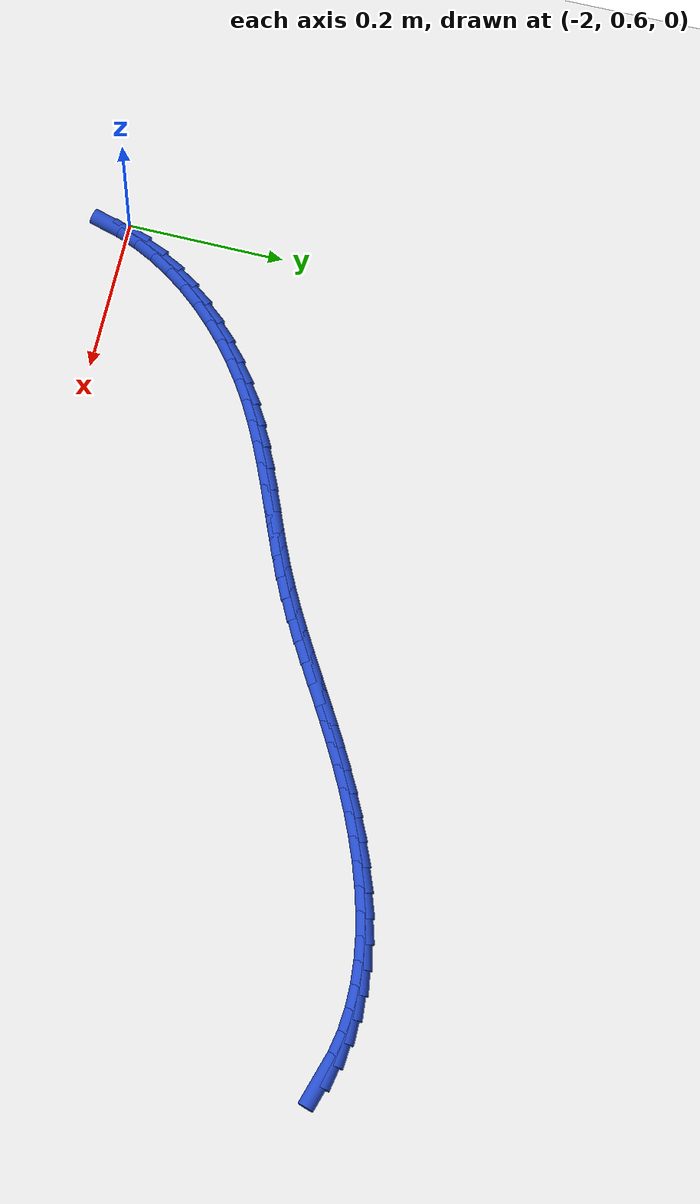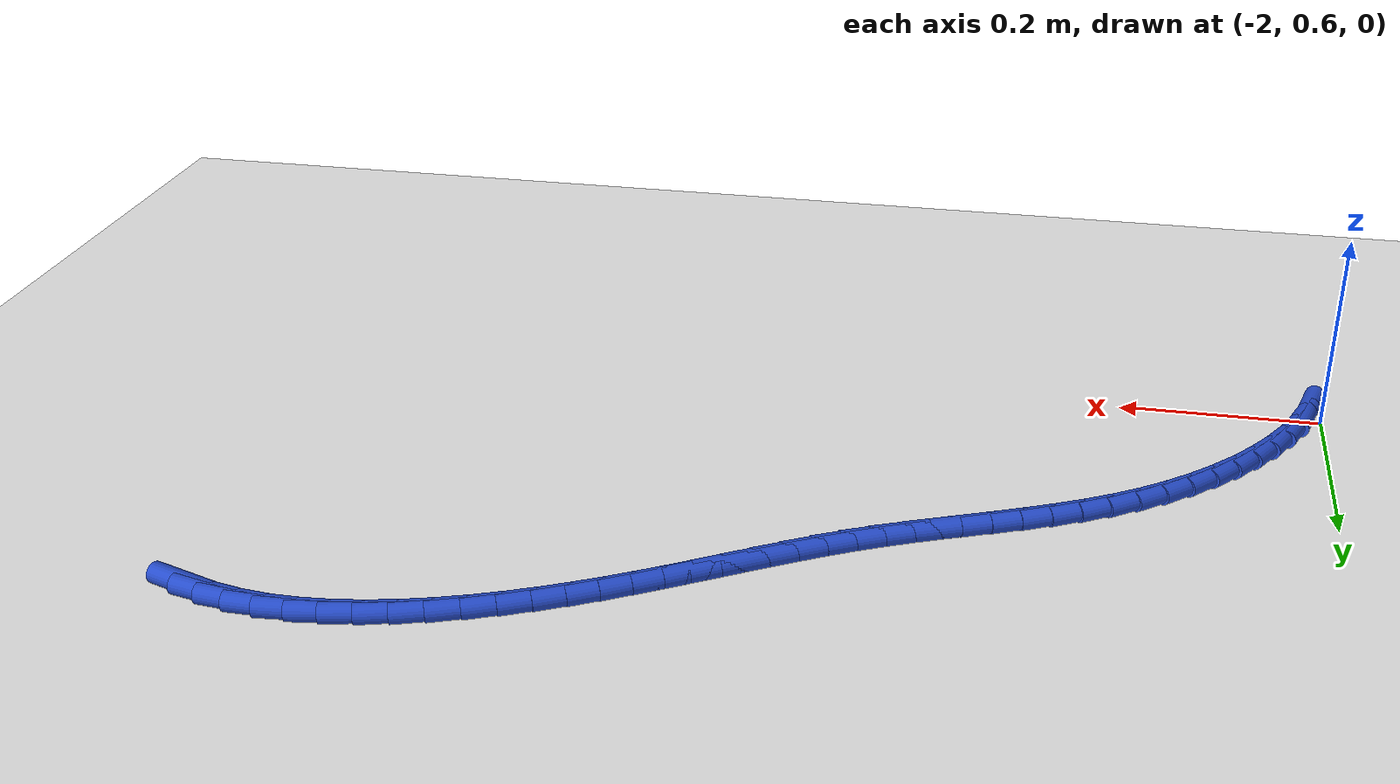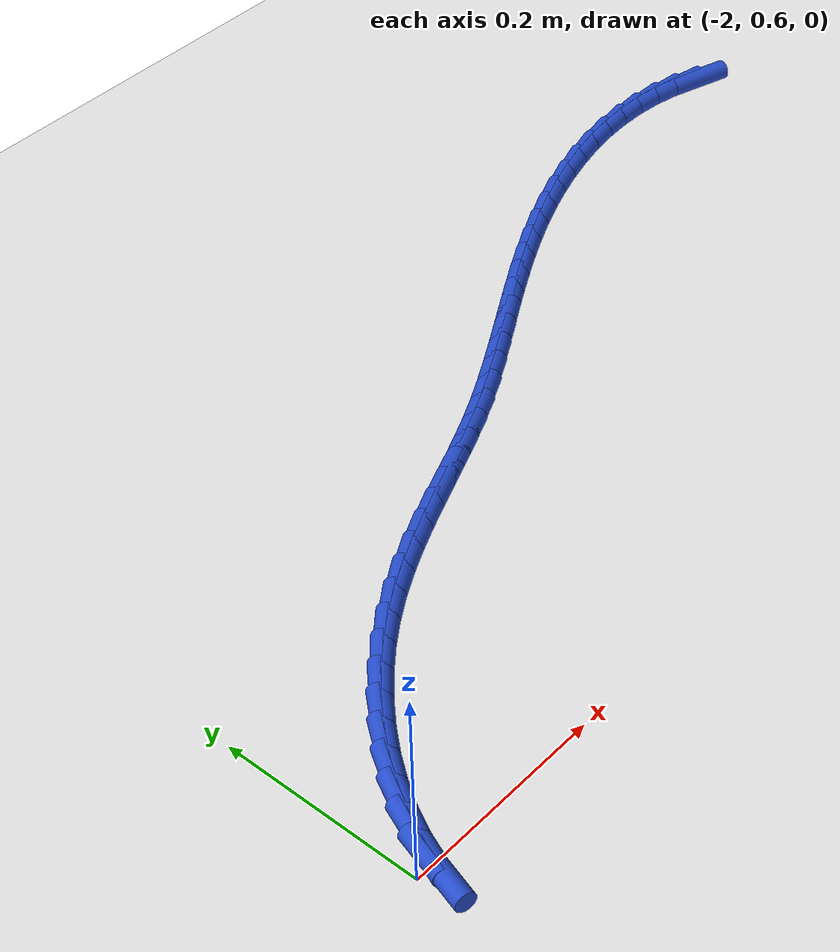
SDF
<sdf version="1.6">
 <world name="default">
  <model name="ground_plane">
   <static>1</static>
   <link name="link">
    <collision name="collision">
     <geometry><plane><normal>0 0 1</normal><size>100 100</size></plane></geometry>
     <surface><friction><ode><mu>100</mu><mu2>50</mu2></ode></friction></surface>
    </collision>
    <visual name="visual">
     <cast_shadows>0</cast_shadows>
     <geometry><plane><normal>0 0 1</normal><size>100 100</size></plane></geometry>
     <material>
      <script><uri>file://media/materials/scripts/gazebo.material</uri><name>Gazebo/WhiteGlow</name></script>
     </material>
    </visual>
   </link>
  </model>
  <model name="line">
   <link name="link_59">
    <pose>-1.017250696293944 1.0805025394654466 0.01 0 1.57 -0.30448769321737107</pose>
    <collision name="collision">
     <geometry><cylinder><radius>0.01</radius><length>0.08</length></cylinder></geometry>
    </collision>
    <visual name="visual">
     <material>
      <script><name>Gazebo/Blue</name><uri>file://media/materials/scripts/gazebo.material</uri></script>
     </material>
     <geometry><cylinder><radius>0.01</radius><length>0.08</length></cylinder></geometry>
    </visual>
   </link>
   <link name="link_60">
    <pose>-1.043497933649188 1.0887510024155171 0.01 0 1.57 -0.19464959362633424</pose>
    <collision name="collision">
     <geometry><cylinder><radius>0.01</radius><length>0.08</length></cylinder></geometry>
    </collision>
    <visual name="visual">
     <material>
      <script><name>Gazebo/Blue</name><uri>file://media/materials/scripts/gazebo.material</uri></script>
     </material>
     <geometry><cylinder><radius>0.01</radius><length>0.08</length></cylinder></geometry>
    </visual>
   </link>
   <link name="link_61">
    <pose>-1.0704607555683376 1.0940666083127843 0.01 0 1.57 -0.09371065280296133</pose>
    <collision name="collision">
     <geometry><cylinder><radius>0.01</radius><length>0.08</length></cylinder></geometry>
    </collision>
    <visual name="visual">
     <material>
      <script><name>Gazebo/Blue</name><uri>file://media/materials/scripts/gazebo.material</uri></script>
     </material>
     <geometry><cylinder><radius>0.01</radius><length>0.08</length></cylinder></geometry>
    </visual>
   </link>
   <link name="link_62">
    <pose>-1.0980008150682683 1.096654986481422 0.01 0 1.57 -0.0025459436662339007</pose>
    <collision name="collision">
     <geometry><cylinder><radius>0.01</radius><length>0.08</length></cylinder></geometry>
    </collision>
    <visual name="visual">
     <material>
      <script><name>Gazebo/Blue</name><uri>file://media/materials/scripts/gazebo.material</uri></script>
     </material>
     <geometry><cylinder><radius>0.01</radius><length>0.08</length></cylinder></geometry>
    </visual>
   </link>
   <link name="link_63">
    <pose>-1.1259782229353827 1.096726215539677 0.01 0 1.57 0.07891102301631375</pose>
    <collision name="collision">
     <geometry><cylinder><radius>0.01</radius><length>0.08</length></cylinder></geometry>
    </collision>
    <visual name="visual">
     <material>
      <script><name>Gazebo/Blue</name><uri>file://media/materials/scripts/gazebo.material</uri></script>
     </material>
     <geometry><cylinder><radius>0.01</radius><length>0.08</length></cylinder></geometry>
    </visual>
   </link>
   <link name="link_64">
    <pose>-1.1542530899560826 1.0944903741057956 0.01 0 1.57 0.15122702188237377</pose>
    <collision name="collision">
     <geometry><cylinder><radius>0.01</radius><length>0.08</length></cylinder></geometry>
    </collision>
    <visual name="visual">
     <material>
      <script><name>Gazebo/Blue</name><uri>file://media/materials/scripts/gazebo.material</uri></script>
     </material>
     <geometry><cylinder><radius>0.01</radius><length>0.08</length></cylinder></geometry>
    </visual>
   </link>
   <link name="link_65">
    <pose>-1.1826855269167695 1.090157540798024 0.01 0 1.57 0.21523302358469026</pose>
    <collision name="collision">
     <geometry><cylinder><radius>0.01</radius><length>0.08</length></cylinder></geometry>
    </collision>
    <visual name="visual">
     <material>
      <script><name>Gazebo/Blue</name><uri>file://media/materials/scripts/gazebo.material</uri></script>
     </material>
     <geometry><cylinder><radius>0.01</radius><length>0.08</length></cylinder></geometry>
    </visual>
   </link>
   <link name="link_66">
    <pose>-1.2111356446038466 1.0839377942346085 0.01 0 1.57 0.27185498440011013</pose>
    <collision name="collision">
     <geometry><cylinder><radius>0.01</radius><length>0.08</length></cylinder></geometry>
    </collision>
    <visual name="visual">
     <material>
      <script><name>Gazebo/Blue</name><uri>file://media/materials/scripts/gazebo.material</uri></script>
     </material>
     <geometry><cylinder><radius>0.01</radius><length>0.08</length></cylinder></geometry>
    </visual>
   </link>
   <link name="link_67">
    <pose>-1.2394635538037153 1.0760412130337957 0.01 0 1.57 0.3220092115223333</pose>
    <collision name="collision">
     <geometry><cylinder><radius>0.01</radius><length>0.08</length></cylinder></geometry>
    </collision>
    <visual name="visual">
     <material>
      <script><name>Gazebo/Blue</name><uri>file://media/materials/scripts/gazebo.material</uri></script>
     </material>
     <geometry><cylinder><radius>0.01</radius><length>0.08</length></cylinder></geometry>
    </visual>
   </link>
   <link name="link_68">
    <pose>-1.2675293653027777 1.0666778758138318 0.01 0 1.57 0.36654646738478314</pose>
    <collision name="collision">
     <geometry><cylinder><radius>0.01</radius><length>0.08</length></cylinder></geometry>
    </collision>
    <visual name="visual">
     <material>
      <script><name>Gazebo/Blue</name><uri>file://media/materials/scripts/gazebo.material</uri></script>
     </material>
     <geometry><cylinder><radius>0.01</radius><length>0.08</length></cylinder></geometry>
    </visual>
   </link>
   <link name="link_69">
    <pose>-1.2951931898874358 1.0560578611929627 0.01 0 1.57 0.4062279820900482</pose>
    <collision name="collision">
     <geometry><cylinder><radius>0.01</radius><length>0.08</length></cylinder></geometry>
    </collision>
    <visual name="visual">
     <material>
      <script><name>Gazebo/Blue</name><uri>file://media/materials/scripts/gazebo.material</uri></script>
     </material>
     <geometry><cylinder><radius>0.01</radius><length>0.08</length></cylinder></geometry>
    </visual>
   </link>
   <link name="link_70">
    <pose>-1.3223151383440923 1.044391247789435 0.01 0 1.57 0.44170567295344376</pose>
    <collision name="collision">
     <geometry><cylinder><radius>0.01</radius><length>0.08</length></cylinder></geometry>
    </collision>
    <visual name="visual">
     <material>
      <script><name>Gazebo/Blue</name><uri>file://media/materials/scripts/gazebo.material</uri></script>
     </material>
     <geometry><cylinder><radius>0.01</radius><length>0.08</length></cylinder></geometry>
    </visual>
   </link>
   <link name="link_71">
    <pose>-1.3487570812899767 1.0318877543113232 0.01 0 1.57 0.4726042678196913</pose>
    <collision name="collision">
     <geometry><cylinder><radius>0.01</radius><length>0.08</length></cylinder></geometry>
    </collision>
    <visual name="visual">
     <material>
      <script><name>Gazebo/Blue</name><uri>file://media/materials/scripts/gazebo.material</uri></script>
     </material>
     <geometry><cylinder><radius>0.01</radius><length>0.08</length></cylinder></geometry>
    </visual>
   </link>
   <link name="link_72">
    <pose>-1.3744805622894767 1.0187367149462125 0.01 0 1.57 0.4974909921542903</pose>
    <collision name="collision">
     <geometry><cylinder><radius>0.01</radius><length>0.08</length></cylinder></geometry>
    </collision>
    <visual name="visual">
     <material>
      <script><name>Gazebo/Blue</name><uri>file://media/materials/scripts/gazebo.material</uri></script>
     </material>
     <geometry><cylinder><radius>0.01</radius><length>0.08</length></cylinder></geometry>
    </visual>
   </link>
   <link name="link_73">
    <pose>-1.399598308522301 1.0050965447046003 0.01 0 1.57 0.5159266707499283</pose>
    <collision name="collision">
     <geometry><cylinder><radius>0.01</radius><length>0.08</length></cylinder></geometry>
    </collision>
    <visual name="visual">
     <material>
      <script><name>Gazebo/Blue</name><uri>file://media/materials/scripts/gazebo.material</uri></script>
     </material>
     <geometry><cylinder><radius>0.01</radius><length>0.08</length></cylinder></geometry>
    </visual>
   </link>
   <link name="link_74">
    <pose>-1.42423567295703 0.9911230764454649 0.01 0 1.57 0.5276514736153676</pose>
    <collision name="collision">
     <geometry><cylinder><radius>0.01</radius><length>0.08</length></cylinder></geometry>
    </collision>
    <visual name="visual">
     <material>
      <script><name>Gazebo/Blue</name><uri>file://media/materials/scripts/gazebo.material</uri></script>
     </material>
     <geometry><cylinder><radius>0.01</radius><length>0.08</length></cylinder></geometry>
    </visual>
   </link>
   <link name="link_75">
    <pose>-1.4485180085622433 0.9769721430277838 0.01 0 1.57 0.5324632685793154</pose>
    <collision name="collision">
     <geometry><cylinder><radius>0.01</radius><length>0.08</length></cylinder></geometry>
    </collision>
    <visual name="visual">
     <material>
      <script><name>Gazebo/Blue</name><uri>file://media/materials/scripts/gazebo.material</uri></script>
     </material>
     <geometry><cylinder><radius>0.01</radius><length>0.08</length></cylinder></geometry>
    </visual>
   </link>
   <link name="link_76">
    <pose>-1.472570668306522 0.9627995773105359 0.01 0 1.57 0.5302059813535058</pose>
    <collision name="collision">
     <geometry><cylinder><radius>0.01</radius><length>0.08</length></cylinder></geometry>
    </collision>
    <visual name="visual">
     <material>
      <script><name>Gazebo/Blue</name><uri>file://media/materials/scripts/gazebo.material</uri></script>
     </material>
     <geometry><cylinder><radius>0.01</radius><length>0.08</length></cylinder></geometry>
    </visual>
   </link>
   <link name="link_77">
    <pose>-1.496519005158446 0.9487612121526985 0.01 0 1.57 0.5207659003003821</pose>
    <collision name="collision">
     <geometry><cylinder><radius>0.01</radius><length>0.08</length></cylinder></geometry>
    </collision>
    <visual name="visual">
     <material>
      <script><name>Gazebo/Blue</name><uri>file://media/materials/scripts/gazebo.material</uri></script>
     </material>
     <geometry><cylinder><radius>0.01</radius><length>0.08</length></cylinder></geometry>
    </visual>
   </link>
   <link name="link_78">
    <pose>-1.5204883720865956 0.9350128804132496 0.01 0 1.57 0.5040777116409848</pose>
    <collision name="collision">
     <geometry><cylinder><radius>0.01</radius><length>0.08</length></cylinder></geometry>
    </collision>
    <visual name="visual">
     <material>
      <script><name>Gazebo/Blue</name><uri>file://media/materials/scripts/gazebo.material</uri></script>
     </material>
     <geometry><cylinder><radius>0.01</radius><length>0.08</length></cylinder></geometry>
    </visual>
   </link>
   <link name="link_79">
    <pose>-1.5446041220595514 0.9217104149511683 0.01 0 1.57 0.4801411841646987</pose>
    <collision name="collision">
     <geometry><cylinder><radius>0.01</radius><length>0.08</length></cylinder></geometry>
    </collision>
    <visual name="visual">
     <material>
      <script><name>Gazebo/Blue</name><uri>file://media/materials/scripts/gazebo.material</uri></script>
     </material>
     <geometry><cylinder><radius>0.01</radius><length>0.08</length></cylinder></geometry>
    </visual>
   </link>
   <link name="link_80">
    <pose>-1.5689916080458937 0.9090096486254315 0.01 0 1.57 0.4491296915124729</pose>
    <collision name="collision">
     <geometry><cylinder><radius>0.01</radius><length>0.08</length></cylinder></geometry>
    </collision>
    <visual name="visual">
     <material>
      <script><name>Gazebo/Blue</name><uri>file://media/materials/scripts/gazebo.material</uri></script>
     </material>
     <geometry><cylinder><radius>0.01</radius><length>0.08</length></cylinder></geometry>
    </visual>
   </link>
   <link name="link_81">
    <pose>-1.5937750942696884 0.8970644511902185 0.01 0 1.57 0.41758502771615713</pose>
    <collision name="collision">
     <geometry><cylinder><radius>0.01</radius><length>0.08</length></cylinder></geometry>
    </collision>
    <visual name="visual">
     <material>
      <script><name>Gazebo/Blue</name><uri>file://media/materials/scripts/gazebo.material</uri></script>
     </material>
     <geometry><cylinder><radius>0.01</radius><length>0.08</length></cylinder></geometry>
    </visual>
   </link>
   <link name="link_82">
    <pose>-1.6189938402465534 0.8858754212245079 0.01 0 1.57 0.3963757992233775</pose>
    <collision name="collision">
     <geometry><cylinder><radius>0.01</radius><length>0.08</length></cylinder></geometry>
    </collision>
    <visual name="visual">
     <material>
      <script><name>Gazebo/Blue</name><uri>file://media/materials/scripts/gazebo.material</uri></script>
     </material>
     <geometry><cylinder><radius>0.01</radius><length>0.08</length></cylinder></geometry>
    </visual>
   </link>
   <link name="link_83">
    <pose>-1.644542580585156 0.8751825658325427 0.01 0 1.57 0.38645741820893587</pose>
    <collision name="collision">
     <geometry><cylinder><radius>0.01</radius><length>0.08</length></cylinder></geometry>
    </collision>
    <visual name="visual">
     <material>
      <script><name>Gazebo/Blue</name><uri>file://media/materials/scripts/gazebo.material</uri></script>
     </material>
     <geometry><cylinder><radius>0.01</radius><length>0.08</length></cylinder></geometry>
    </visual>
   </link>
   <link name="link_84">
    <pose>-1.670301995540597 0.8647005508483365 0.01 0 1.57 0.38769536401477456</pose>
    <collision name="collision">
     <geometry><cylinder><radius>0.01</radius><length>0.08</length></cylinder></geometry>
    </collision>
    <visual name="visual">
     <material>
      <script><name>Gazebo/Blue</name><uri>file://media/materials/scripts/gazebo.material</uri></script>
     </material>
     <geometry><cylinder><radius>0.01</radius><length>0.08</length></cylinder></geometry>
    </visual>
   </link>
   <link name="link_85">
    <pose>-1.6961527653679773 0.8541440421059018 0.01 0 1.57 0.399954985552205</pose>
    <collision name="collision">
     <geometry><cylinder><radius>0.01</radius><length>0.08</length></cylinder></geometry>
    </collision>
    <visual name="visual">
     <material>
      <script><name>Gazebo/Blue</name><uri>file://media/materials/scripts/gazebo.material</uri></script>
     </material>
     <geometry><cylinder><radius>0.01</radius><length>0.08</length></cylinder></geometry>
    </visual>
   </link>
   <link name="link_86">
    <pose>-1.7219755703223991 0.8432277054392524 0.01 0 1.57 0.42309728897536186</pose>
    <collision name="collision">
     <geometry><cylinder><radius>0.01</radius><length>0.08</length></cylinder></geometry>
    </collision>
    <visual name="visual">
     <material>
      <script><name>Gazebo/Blue</name><uri>file://media/materials/scripts/gazebo.material</uri></script>
     </material>
     <geometry><cylinder><radius>0.01</radius><length>0.08</length></cylinder></geometry>
    </visual>
   </link>
   <link name="link_87">
    <pose>-1.7476510906589622 0.8316662066824009 0.01 0 1.57 0.4569358615915633</pose>
    <collision name="collision">
     <geometry><cylinder><radius>0.01</radius><length>0.08</length></cylinder></geometry>
    </collision>
    <visual name="visual">
     <material>
      <script><name>Gazebo/Blue</name><uri>file://media/materials/scripts/gazebo.material</uri></script>
     </material>
     <geometry><cylinder><radius>0.01</radius><length>0.08</length></cylinder></geometry>
    </visual>
   </link>
   <link name="link_88">
    <pose>-1.7730600066327689 0.8191742116693609 0.01 0 1.57 0.5011596674941322</pose>
    <collision name="collision">
     <geometry><cylinder><radius>0.01</radius><length>0.08</length></cylinder></geometry>
    </collision>
    <visual name="visual">
     <material>
      <script><name>Gazebo/Blue</name><uri>file://media/materials/scripts/gazebo.material</uri></script>
     </material>
     <geometry><cylinder><radius>0.01</radius><length>0.08</length></cylinder></geometry>
    </visual>
   </link>
   <link name="link_89">
    <pose>-1.79808299849892 0.805466386234145 0.01 0 1.57 0.5551867098563182</pose>
    <collision name="collision">
     <geometry><cylinder><radius>0.01</radius><length>0.08</length></cylinder></geometry>
    </collision>
    <visual name="visual">
     <material>
      <script><name>Gazebo/Blue</name><uri>file://media/materials/scripts/gazebo.material</uri></script>
     </material>
     <geometry><cylinder><radius>0.01</radius><length>0.08</length></cylinder></geometry>
    </visual>
   </link>
   <link name="link_90">
    <pose>-1.822600254136781 0.7902592047017765 0.01 0 1.57 0.6150440942036165</pose>
    <collision name="collision">
     <geometry><cylinder><radius>0.01</radius><length>0.08</length></cylinder></geometry>
    </collision>
    <visual name="visual">
     <material>
      <script><name>Gazebo/Blue</name><uri>file://media/materials/scripts/gazebo.material</uri></script>
     </material>
     <geometry><cylinder><radius>0.01</radius><length>0.08</length></cylinder></geometry>
    </visual>
   </link>
   <link name="link_91">
    <pose>-1.8464543142794712 0.7734074189779196 0.01 0 1.57 0.6755977644920126</pose>
    <collision name="collision">
     <geometry><cylinder><radius>0.01</radius><length>0.08</length></cylinder></geometry>
    </collision>
    <visual name="visual">
     <material>
      <script><name>Gazebo/Blue</name><uri>file://media/materials/scripts/gazebo.material</uri></script>
     </material>
     <geometry><cylinder><radius>0.01</radius><length>0.08</length></cylinder></geometry>
    </visual>
   </link>
   <link name="link_92">
    <pose>-1.8694241570939931 0.7549992456192872 0.01 0 1.57 0.7373765911074086</pose>
    <collision name="collision">
     <geometry><cylinder><radius>0.01</radius><length>0.08</length></cylinder></geometry>
    </collision>
    <visual name="visual">
     <material>
      <script><name>Gazebo/Blue</name><uri>file://media/materials/scripts/gazebo.material</uri></script>
     </material>
     <geometry><cylinder><radius>0.01</radius><length>0.08</length></cylinder></geometry>
    </visual>
   </link>
   <link name="link_93">
    <pose>-1.8912826352710568 0.7351453999939737 0.01 0 1.57 0.8014326566754941</pose>
    <collision name="collision">
     <geometry><cylinder><radius>0.01</radius><length>0.08</length></cylinder></geometry>
    </collision>
    <visual name="visual">
     <material>
      <script><name>Gazebo/Blue</name><uri>file://media/materials/scripts/gazebo.material</uri></script>
     </material>
     <geometry><cylinder><radius>0.01</radius><length>0.08</length></cylinder></geometry>
    </visual>
   </link>
   <link name="link_94">
    <pose>-1.9118026015013694 0.7139565974700741 0.01 0 1.57 0.8688144563385514</pose>
    <collision name="collision">
     <geometry><cylinder><radius>0.01</radius><length>0.08</length></cylinder></geometry>
    </collision>
    <visual name="visual">
     <material>
      <script><name>Gazebo/Blue</name><uri>file://media/materials/scripts/gazebo.material</uri></script>
     </material>
     <geometry><cylinder><radius>0.01</radius><length>0.08</length></cylinder></geometry>
    </visual>
   </link>
   <link name="link_95">
    <pose>-1.930756908475641 0.6915435534156833 0.01 0 1.57 0.9405762464608078</pose>
    <collision name="collision">
     <geometry><cylinder><radius>0.01</radius><length>0.08</length></cylinder></geometry>
    </collision>
    <visual name="visual">
     <material>
      <script><name>Gazebo/Blue</name><uri>file://media/materials/scripts/gazebo.material</uri></script>
     </material>
     <geometry><cylinder><radius>0.01</radius><length>0.08</length></cylinder></geometry>
    </visual>
   </link>
   <link name="link_96">
    <pose>-1.94791840888458 0.6680169831988957 0.01 0 1.57 1.017766260681475</pose>
    <collision name="collision">
     <geometry><cylinder><radius>0.01</radius><length>0.08</length></cylinder></geometry>
    </collision>
    <visual name="visual">
     <material>
      <script><name>Gazebo/Blue</name><uri>file://media/materials/scripts/gazebo.material</uri></script>
     </material>
     <geometry><cylinder><radius>0.01</radius><length>0.08</length></cylinder></geometry>
    </visual>
   </link>
   <link name="link_97">
    <pose>-1.963059955418893 0.643487602187806 0.01 0 1.57 1.1013842811501526</pose>
    <collision name="collision">
     <geometry><cylinder><radius>0.01</radius><length>0.08</length></cylinder></geometry>
    </collision>
    <visual name="visual">
     <material>
      <script><name>Gazebo/Blue</name><uri>file://media/materials/scripts/gazebo.material</uri></script>
     </material>
     <geometry><cylinder><radius>0.01</radius><length>0.08</length></cylinder></geometry>
    </visual>
   </link>
   <link name="link_98">
    <pose>-1.9759544007692895 0.6180661257505091 0.01 0 1.57 1.1922966596731226</pose>
    <collision name="collision">
     <geometry><cylinder><radius>0.01</radius><length>0.08</length></cylinder></geometry>
    </collision>
    <visual name="visual">
     <material>
      <script><name>Gazebo/Blue</name><uri>file://media/materials/scripts/gazebo.material</uri></script>
     </material>
     <geometry><cylinder><radius>0.01</radius><length>0.08</length></cylinder></geometry>
    </visual>
   </link>
   <link name="link_99">
    <pose>-1.9863745976264797 0.5918632692551 0.01 0 1.57 1.2910986737807604</pose>
    <collision name="collision">
     <geometry><cylinder><radius>0.01</radius><length>0.08</length></cylinder></geometry>
    </collision>
    <visual name="visual">
     <material>
      <script><name>Gazebo/Blue</name><uri>file://media/materials/scripts/gazebo.material</uri></script>
     </material>
     <geometry><cylinder><radius>0.01</radius><length>0.08</length></cylinder></geometry>
    </visual>
   </link>
  </model>
 </world>
</sdf>
